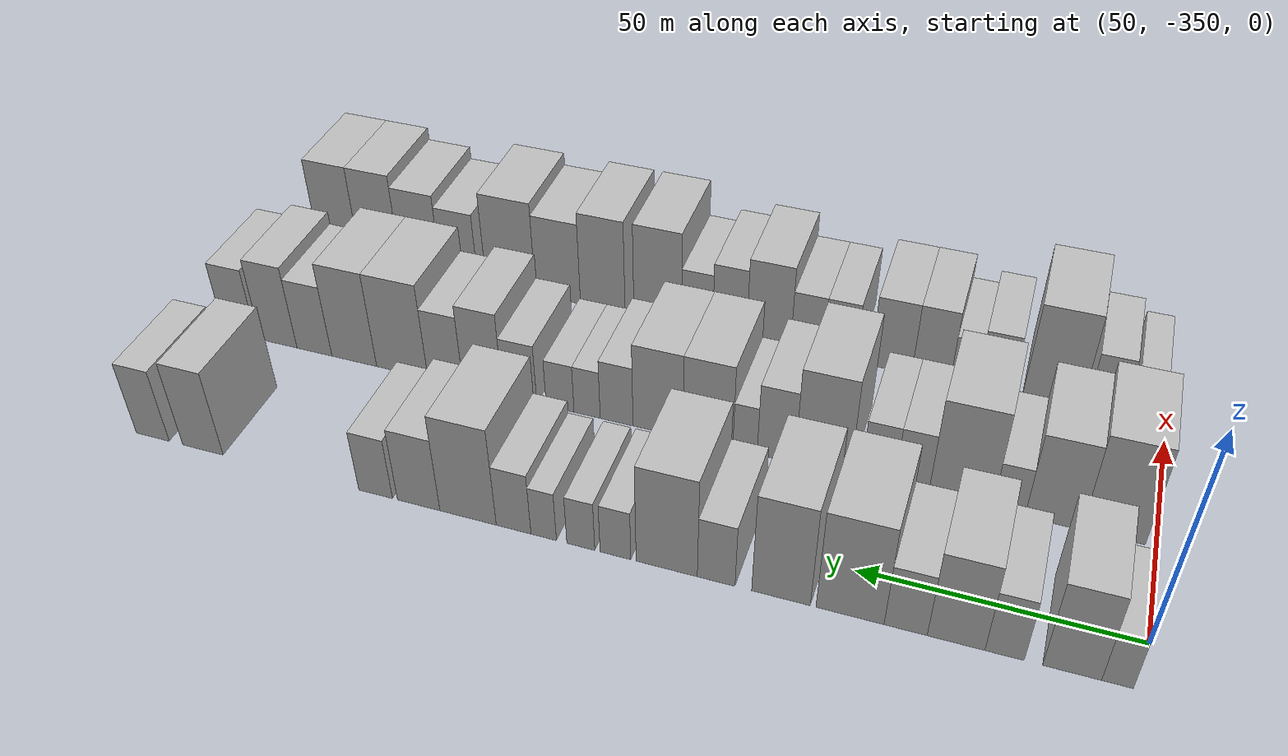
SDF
<sdf version="1.6">
 <world name="default">
  <model name="building_1">
   <static>1</static>
   <pose>50.0000 -345.4866 0 0.000000 0.000000 0.000000</pose>
   <link name="link">
    <pose>0 0 6.00 0 0 0</pose>
    <collision name="collision"><geometry><box><size>20.0000 5.0268 12.0000</size></box></geometry></collision>
    <visual name="visual">
     <cast_shadows>0</cast_shadows>
     <geometry><box><size>20.0000 5.0268 12.0000</size></box></geometry>
     <material>
      <script>
       <uri>model://HANNAS_wall/materials/scripts</uri>
       <uri>model://HANNAS_wall/materials/textures</uri>
       <name>vrc/HANNAS_wall</name>
      </script>
     </material>
    </visual>
   </link>
  </model>
  <model name="building_2">
   <static>1</static>
   <pose>50.0000 -338.2310 0 0.000000 0.000000 0.000000</pose>
   <link name="link">
    <pose>0 0 10.50 0 0 0</pose>
    <collision name="collision"><geometry><box><size>20.0000 9.4843 21.0000</size></box></geometry></collision>
    <visual name="visual">
     <cast_shadows>0</cast_shadows>
     <geometry><box><size>20.0000 9.4843 21.0000</size></box></geometry>
     <material>
      <script>
       <uri>model://HANNAS_wall/materials/scripts</uri>
       <uri>model://HANNAS_wall/materials/textures</uri>
       <name>vrc/HANNAS_wall</name>
      </script>
     </material>
    </visual>
   </link>
  </model>
  <model name="building_3">
   <static>1</static>
   <pose>50.0000 -327.2574 0 0.000000 0.000000 0.000000</pose>
   <link name="link">
    <pose>0 0 7.50 0 0 0</pose>
    <collision name="collision"><geometry><box><size>20.0000 6.4630 15.0000</size></box></geometry></collision>
    <visual name="visual">
     <cast_shadows>0</cast_shadows>
     <geometry><box><size>20.0000 6.4630 15.0000</size></box></geometry>
     <material>
      <script>
       <uri>model://HANNAS_wall/materials/scripts</uri>
       <uri>model://HANNAS_wall/materials/textures</uri>
       <name>vrc/HANNAS_wall</name>
      </script>
     </material>
    </visual>
   </link>
  </model>
  <model name="building_4">
   <static>1</static>
   <pose>50.0000 -319.1968 0 0.000000 0.000000 0.000000</pose>
   <link name="link">
    <pose>0 0 10.50 0 0 0</pose>
    <collision name="collision"><geometry><box><size>20.0000 9.6581 21.0000</size></box></geometry></collision>
    <visual name="visual">
     <cast_shadows>0</cast_shadows>
     <geometry><box><size>20.0000 9.6581 21.0000</size></box></geometry>
     <material>
      <script>
       <uri>model://HANNAS_wall/materials/scripts</uri>
       <uri>model://HANNAS_wall/materials/textures</uri>
       <name>vrc/HANNAS_wall</name>
      </script>
     </material>
    </visual>
   </link>
  </model>
  <model name="building_5">
   <static>1</static>
   <pose>50.0000 -310.7020 0 0.000000 0.000000 0.000000</pose>
   <link name="link">
    <pose>0 0 7.50 0 0 0</pose>
    <collision name="collision"><geometry><box><size>20.0000 7.3315 15.0000</size></box></geometry></collision>
    <visual name="visual">
     <cast_shadows>0</cast_shadows>
     <geometry><box><size>20.0000 7.3315 15.0000</size></box></geometry>
     <material>
      <script>
       <uri>model://HANNAS_wall/materials/scripts</uri>
       <uri>model://HANNAS_wall/materials/textures</uri>
       <name>vrc/HANNAS_wall</name>
      </script>
     </material>
    </visual>
   </link>
  </model>
  <model name="building_6">
   <static>1</static>
   <pose>50.0000 -301.1342 0 0.000000 0.000000 0.000000</pose>
   <link name="link">
    <pose>0 0 12.00 0 0 0</pose>
    <collision name="collision"><geometry><box><size>20.0000 11.8042 24.0000</size></box></geometry></collision>
    <visual name="visual">
     <cast_shadows>0</cast_shadows>
     <geometry><box><size>20.0000 11.8042 24.0000</size></box></geometry>
     <material>
      <script>
       <uri>model://HANNAS_wall/materials/scripts</uri>
       <uri>model://HANNAS_wall/materials/textures</uri>
       <name>vrc/HANNAS_wall</name>
      </script>
     </material>
    </visual>
   </link>
  </model>
  <model name="building_7">
   <static>1</static>
   <pose>50.0000 -289.0184 0 0.000000 0.000000 0.000000</pose>
   <link name="link">
    <pose>0 0 12.00 0 0 0</pose>
    <collision name="collision"><geometry><box><size>20.0000 10.4274 24.0000</size></box></geometry></collision>
    <visual name="visual">
     <cast_shadows>0</cast_shadows>
     <geometry><box><size>20.0000 10.4274 24.0000</size></box></geometry>
     <material>
      <script>
       <uri>model://HANNAS_wall/materials/scripts</uri>
       <uri>model://HANNAS_wall/materials/textures</uri>
       <name>vrc/HANNAS_wall</name>
      </script>
     </material>
    </visual>
   </link>
  </model>
  <model name="building_8">
   <static>1</static>
   <pose>50.0000 -277.3767 0 0.000000 0.000000 0.000000</pose>
   <link name="link">
    <pose>0 0 7.50 0 0 0</pose>
    <collision name="collision"><geometry><box><size>20.0000 6.8560 15.0000</size></box></geometry></collision>
    <visual name="visual">
     <cast_shadows>0</cast_shadows>
     <geometry><box><size>20.0000 6.8560 15.0000</size></box></geometry>
     <material>
      <script>
       <uri>model://HANNAS_wall/materials/scripts</uri>
       <uri>model://HANNAS_wall/materials/textures</uri>
       <name>vrc/HANNAS_wall</name>
      </script>
     </material>
    </visual>
   </link>
  </model>
  <model name="building_9">
   <static>1</static>
   <pose>50.0000 -268.2881 0 0.000000 0.000000 0.000000</pose>
   <link name="link">
    <pose>0 0 12.00 0 0 0</pose>
    <collision name="collision"><geometry><box><size>20.0000 11.3212 24.0000</size></box></geometry></collision>
    <visual name="visual">
     <cast_shadows>0</cast_shadows>
     <geometry><box><size>20.0000 11.3212 24.0000</size></box></geometry>
     <material>
      <script>
       <uri>model://HANNAS_wall/materials/scripts</uri>
       <uri>model://HANNAS_wall/materials/textures</uri>
       <name>vrc/HANNAS_wall</name>
      </script>
     </material>
    </visual>
   </link>
  </model>
  <model name="building_10">
   <static>1</static>
   <pose>50.0000 -258.7384 0 0.000000 0.000000 0.000000</pose>
   <link name="link">
    <pose>0 0 6.00 0 0 0</pose>
    <collision name="collision"><geometry><box><size>20.0000 5.7780 12.0000</size></box></geometry></collision>
    <visual name="visual">
     <cast_shadows>0</cast_shadows>
     <geometry><box><size>20.0000 5.7780 12.0000</size></box></geometry>
     <material>
      <script>
       <uri>model://HANNAS_wall/materials/scripts</uri>
       <uri>model://HANNAS_wall/materials/textures</uri>
       <name>vrc/HANNAS_wall</name>
      </script>
     </material>
    </visual>
   </link>
  </model>
  <model name="building_11">
   <static>1</static>
   <pose>50.0000 -252.1770 0 0.000000 0.000000 0.000000</pose>
   <link name="link">
    <pose>0 0 6.00 0 0 0</pose>
    <collision name="collision"><geometry><box><size>20.0000 5.3448 12.0000</size></box></geometry></collision>
    <visual name="visual">
     <cast_shadows>0</cast_shadows>
     <geometry><box><size>20.0000 5.3448 12.0000</size></box></geometry>
     <material>
      <script>
       <uri>model://HANNAS_wall/materials/scripts</uri>
       <uri>model://HANNAS_wall/materials/textures</uri>
       <name>vrc/HANNAS_wall</name>
      </script>
     </material>
    </visual>
   </link>
  </model>
  <model name="building_12">
   <static>1</static>
   <pose>50.0000 -245.0418 0 0.000000 0.000000 0.000000</pose>
   <link name="link">
    <pose>0 0 6.00 0 0 0</pose>
    <collision name="collision"><geometry><box><size>20.0000 4.9258 12.0000</size></box></geometry></collision>
    <visual name="visual">
     <cast_shadows>0</cast_shadows>
     <geometry><box><size>20.0000 4.9258 12.0000</size></box></geometry>
     <material>
      <script>
       <uri>model://HANNAS_wall/materials/scripts</uri>
       <uri>model://HANNAS_wall/materials/textures</uri>
       <name>vrc/HANNAS_wall</name>
      </script>
     </material>
    </visual>
   </link>
  </model>
  <model name="building_13">
   <static>1</static>
   <pose>50.0000 -239.1823 0 0.000000 0.000000 0.000000</pose>
   <link name="link">
    <pose>0 0 7.50 0 0 0</pose>
    <collision name="collision"><geometry><box><size>20.0000 6.7931 15.0000</size></box></geometry></collision>
    <visual name="visual">
     <cast_shadows>0</cast_shadows>
     <geometry><box><size>20.0000 6.7931 15.0000</size></box></geometry>
     <material>
      <script>
       <uri>model://HANNAS_wall/materials/scripts</uri>
       <uri>model://HANNAS_wall/materials/textures</uri>
       <name>vrc/HANNAS_wall</name>
      </script>
     </material>
    </visual>
   </link>
  </model>
  <model name="building_14">
   <static>1</static>
   <pose>50.0000 -230.1749 0 0.000000 0.000000 0.000000</pose>
   <link name="link">
    <pose>0 0 12.00 0 0 0</pose>
    <collision name="collision"><geometry><box><size>20.0000 11.2219 24.0000</size></box></geometry></collision>
    <visual name="visual">
     <cast_shadows>0</cast_shadows>
     <geometry><box><size>20.0000 11.2219 24.0000</size></box></geometry>
     <material>
      <script>
       <uri>model://HANNAS_wall/materials/scripts</uri>
       <uri>model://HANNAS_wall/materials/textures</uri>
       <name>vrc/HANNAS_wall</name>
      </script>
     </material>
    </visual>
   </link>
  </model>
  <model name="building_15">
   <static>1</static>
   <pose>50.0000 -220.2585 0 0.000000 0.000000 0.000000</pose>
   <link name="link">
    <pose>0 0 9.00 0 0 0</pose>
    <collision name="collision"><geometry><box><size>20.0000 8.6108 18.0000</size></box></geometry></collision>
    <visual name="visual">
     <cast_shadows>0</cast_shadows>
     <geometry><box><size>20.0000 8.6108 18.0000</size></box></geometry>
     <material>
      <script>
       <uri>model://HANNAS_wall/materials/scripts</uri>
       <uri>model://HANNAS_wall/materials/textures</uri>
       <name>vrc/HANNAS_wall</name>
      </script>
     </material>
    </visual>
   </link>
  </model>
  <model name="building_16">
   <static>1</static>
   <pose>50.0000 -211.4764 0 0.000000 0.000000 0.000000</pose>
   <link name="link">
    <pose>0 0 7.50 0 0 0</pose>
    <collision name="collision"><geometry><box><size>20.0000 6.9535 15.0000</size></box></geometry></collision>
    <visual name="visual">
     <cast_shadows>0</cast_shadows>
     <geometry><box><size>20.0000 6.9535 15.0000</size></box></geometry>
     <material>
      <script>
       <uri>model://HANNAS_wall/materials/scripts</uri>
       <uri>model://HANNAS_wall/materials/textures</uri>
       <name>vrc/HANNAS_wall</name>
      </script>
     </material>
    </visual>
   </link>
  </model>
  <model name="building_17">
   <static>1</static>
   <pose>50.0000 -174.6154 0 0.000000 0.000000 0.000000</pose>
   <link name="link">
    <pose>0 0 10.50 0 0 0</pose>
    <collision name="collision"><geometry><box><size>20.0000 8.9228 21.0000</size></box></geometry></collision>
    <visual name="visual">
     <cast_shadows>0</cast_shadows>
     <geometry><box><size>20.0000 8.9228 21.0000</size></box></geometry>
     <material>
      <script>
       <uri>model://HANNAS_wall/materials/scripts</uri>
       <uri>model://HANNAS_wall/materials/textures</uri>
       <name>vrc/HANNAS_wall</name>
      </script>
     </material>
    </visual>
   </link>
  </model>
  <model name="building_18">
   <static>1</static>
   <pose>50.0000 -163.4706 0 0.000000 0.000000 0.000000</pose>
   <link name="link">
    <pose>0 0 9.00 0 0 0</pose>
    <collision name="collision"><geometry><box><size>20.0000 7.3669 18.0000</size></box></geometry></collision>
    <visual name="visual">
     <cast_shadows>0</cast_shadows>
     <geometry><box><size>20.0000 7.3669 18.0000</size></box></geometry>
     <material>
      <script>
       <uri>model://HANNAS_wall/materials/scripts</uri>
       <uri>model://HANNAS_wall/materials/textures</uri>
       <name>vrc/HANNAS_wall</name>
      </script>
     </material>
    </visual>
   </link>
  </model>
  <model name="building_78">
   <static>1</static>
   <pose>82.0000 -342.4117 0 0.000000 0.000000 0.000000</pose>
   <link name="link">
    <pose>0 0 12.00 0 0 0</pose>
    <collision name="collision"><geometry><box><size>20.0000 11.1766 24.0000</size></box></geometry></collision>
    <visual name="visual">
     <cast_shadows>0</cast_shadows>
     <geometry><box><size>20.0000 11.1766 24.0000</size></box></geometry>
     <material>
      <script>
       <uri>model://HANNAS_wall/materials/scripts</uri>
       <uri>model://HANNAS_wall/materials/textures</uri>
       <name>vrc/HANNAS_wall</name>
      </script>
     </material>
    </visual>
   </link>
  </model>
  <model name="building_79">
   <static>1</static>
   <pose>82.0000 -331.7319 0 0.000000 0.000000 0.000000</pose>
   <link name="link">
    <pose>0 0 10.50 0 0 0</pose>
    <collision name="collision"><geometry><box><size>20.0000 10.1832 21.0000</size></box></geometry></collision>
    <visual name="visual">
     <cast_shadows>0</cast_shadows>
     <geometry><box><size>20.0000 10.1832 21.0000</size></box></geometry>
     <material>
      <script>
       <uri>model://HANNAS_wall/materials/scripts</uri>
       <uri>model://HANNAS_wall/materials/textures</uri>
       <name>vrc/HANNAS_wall</name>
      </script>
     </material>
    </visual>
   </link>
  </model>
  <model name="building_80">
   <static>1</static>
   <pose>82.0000 -323.7104 0 0.000000 0.000000 0.000000</pose>
   <link name="link">
    <pose>0 0 6.00 0 0 0</pose>
    <collision name="collision"><geometry><box><size>20.0000 5.8598 12.0000</size></box></geometry></collision>
    <visual name="visual">
     <cast_shadows>0</cast_shadows>
     <geometry><box><size>20.0000 5.8598 12.0000</size></box></geometry>
     <material>
      <script>
       <uri>model://HANNAS_wall/materials/scripts</uri>
       <uri>model://HANNAS_wall/materials/textures</uri>
       <name>vrc/HANNAS_wall</name>
      </script>
     </material>
    </visual>
   </link>
  </model>
  <model name="building_81">
   <static>1</static>
   <pose>82.0000 -314.8779 0 0.000000 0.000000 0.000000</pose>
   <link name="link">
    <pose>0 0 12.00 0 0 0</pose>
    <collision name="collision"><geometry><box><size>20.0000 11.8053 24.0000</size></box></geometry></collision>
    <visual name="visual">
     <cast_shadows>0</cast_shadows>
     <geometry><box><size>20.0000 11.8053 24.0000</size></box></geometry>
     <material>
      <script>
       <uri>model://HANNAS_wall/materials/scripts</uri>
       <uri>model://HANNAS_wall/materials/textures</uri>
       <name>vrc/HANNAS_wall</name>
      </script>
     </material>
    </visual>
   </link>
  </model>
  <model name="building_82">
   <static>1</static>
   <pose>82.0000 -305.7770 0 0.000000 0.000000 0.000000</pose>
   <link name="link">
    <pose>0 0 7.50 0 0 0</pose>
    <collision name="collision"><geometry><box><size>20.0000 6.3965 15.0000</size></box></geometry></collision>
    <visual name="visual">
     <cast_shadows>0</cast_shadows>
     <geometry><box><size>20.0000 6.3965 15.0000</size></box></geometry>
     <material>
      <script>
       <uri>model://HANNAS_wall/materials/scripts</uri>
       <uri>model://HANNAS_wall/materials/textures</uri>
       <name>vrc/HANNAS_wall</name>
      </script>
     </material>
    </visual>
   </link>
  </model>
  <model name="building_83">
   <static>1</static>
   <pose>82.0000 -299.3845 0 0.000000 0.000000 0.000000</pose>
   <link name="link">
    <pose>0 0 7.50 0 0 0</pose>
    <collision name="collision"><geometry><box><size>20.0000 6.3886 15.0000</size></box></geometry></collision>
    <visual name="visual">
     <cast_shadows>0</cast_shadows>
     <geometry><box><size>20.0000 6.3886 15.0000</size></box></geometry>
     <material>
      <script>
       <uri>model://HANNAS_wall/materials/scripts</uri>
       <uri>model://HANNAS_wall/materials/textures</uri>
       <name>vrc/HANNAS_wall</name>
      </script>
     </material>
    </visual>
   </link>
  </model>
  <model name="building_84">
   <static>1</static>
   <pose>82.0000 -288.8081 0 0.000000 0.000000 0.000000</pose>
   <link name="link">
    <pose>0 0 12.00 0 0 0</pose>
    <collision name="collision"><geometry><box><size>20.0000 10.7641 24.0000</size></box></geometry></collision>
    <visual name="visual">
     <cast_shadows>0</cast_shadows>
     <geometry><box><size>20.0000 10.7641 24.0000</size></box></geometry>
     <material>
      <script>
       <uri>model://HANNAS_wall/materials/scripts</uri>
       <uri>model://HANNAS_wall/materials/textures</uri>
       <name>vrc/HANNAS_wall</name>
      </script>
     </material>
    </visual>
   </link>
  </model>
  <model name="building_85">
   <static>1</static>
   <pose>82.0000 -279.7231 0 0.000000 0.000000 0.000000</pose>
   <link name="link">
    <pose>0 0 9.00 0 0 0</pose>
    <collision name="collision"><geometry><box><size>20.0000 7.4059 18.0000</size></box></geometry></collision>
    <visual name="visual">
     <cast_shadows>0</cast_shadows>
     <geometry><box><size>20.0000 7.4059 18.0000</size></box></geometry>
     <material>
      <script>
       <uri>model://HANNAS_wall/materials/scripts</uri>
       <uri>model://HANNAS_wall/materials/textures</uri>
       <name>vrc/HANNAS_wall</name>
      </script>
     </material>
    </visual>
   </link>
  </model>
  <model name="building_86">
   <static>1</static>
   <pose>82.0000 -273.6131 0 0.000000 0.000000 0.000000</pose>
   <link name="link">
    <pose>0 0 6.00 0 0 0</pose>
    <collision name="collision"><geometry><box><size>20.0000 4.8140 12.0000</size></box></geometry></collision>
    <visual name="visual">
     <cast_shadows>0</cast_shadows>
     <geometry><box><size>20.0000 4.8140 12.0000</size></box></geometry>
     <material>
      <script>
       <uri>model://HANNAS_wall/materials/scripts</uri>
       <uri>model://HANNAS_wall/materials/textures</uri>
       <name>vrc/HANNAS_wall</name>
      </script>
     </material>
    </visual>
   </link>
  </model>
  <model name="building_87">
   <static>1</static>
   <pose>82.0000 -266.1948 0 0.000000 0.000000 0.000000</pose>
   <link name="link">
    <pose>0 0 10.50 0 0 0</pose>
    <collision name="collision"><geometry><box><size>20.0000 10.0226 21.0000</size></box></geometry></collision>
    <visual name="visual">
     <cast_shadows>0</cast_shadows>
     <geometry><box><size>20.0000 10.0226 21.0000</size></box></geometry>
     <material>
      <script>
       <uri>model://HANNAS_wall/materials/scripts</uri>
       <uri>model://HANNAS_wall/materials/textures</uri>
       <name>vrc/HANNAS_wall</name>
      </script>
     </material>
    </visual>
   </link>
  </model>
  <model name="building_88">
   <static>1</static>
   <pose>82.0000 -256.0582 0 0.000000 0.000000 0.000000</pose>
   <link name="link">
    <pose>0 0 10.50 0 0 0</pose>
    <collision name="collision"><geometry><box><size>20.0000 10.2505 21.0000</size></box></geometry></collision>
    <visual name="visual">
     <cast_shadows>0</cast_shadows>
     <geometry><box><size>20.0000 10.2505 21.0000</size></box></geometry>
     <material>
      <script>
       <uri>model://HANNAS_wall/materials/scripts</uri>
       <uri>model://HANNAS_wall/materials/textures</uri>
       <name>vrc/HANNAS_wall</name>
      </script>
     </material>
    </visual>
   </link>
  </model>
  <model name="building_89">
   <static>1</static>
   <pose>82.0000 -247.5198 0 0.000000 0.000000 0.000000</pose>
   <link name="link">
    <pose>0 0 7.50 0 0 0</pose>
    <collision name="collision"><geometry><box><size>20.0000 6.8262 15.0000</size></box></geometry></collision>
    <visual name="visual">
     <cast_shadows>0</cast_shadows>
     <geometry><box><size>20.0000 6.8262 15.0000</size></box></geometry>
     <material>
      <script>
       <uri>model://HANNAS_wall/materials/scripts</uri>
       <uri>model://HANNAS_wall/materials/textures</uri>
       <name>vrc/HANNAS_wall</name>
      </script>
     </material>
    </visual>
   </link>
  </model>
  <model name="building_90">
   <static>1</static>
   <pose>82.0000 -241.3505 0 0.000000 0.000000 0.000000</pose>
   <link name="link">
    <pose>0 0 6.00 0 0 0</pose>
    <collision name="collision"><geometry><box><size>20.0000 5.5124 12.0000</size></box></geometry></collision>
    <visual name="visual">
     <cast_shadows>0</cast_shadows>
     <geometry><box><size>20.0000 5.5124 12.0000</size></box></geometry>
     <material>
      <script>
       <uri>model://HANNAS_wall/materials/scripts</uri>
       <uri>model://HANNAS_wall/materials/textures</uri>
       <name>vrc/HANNAS_wall</name>
      </script>
     </material>
    </visual>
   </link>
  </model>
  <model name="building_91">
   <static>1</static>
   <pose>82.0000 -235.6387 0 0.000000 0.000000 0.000000</pose>
   <link name="link">
    <pose>0 0 6.00 0 0 0</pose>
    <collision name="collision"><geometry><box><size>20.0000 5.9111 12.0000</size></box></geometry></collision>
    <visual name="visual">
     <cast_shadows>0</cast_shadows>
     <geometry><box><size>20.0000 5.9111 12.0000</size></box></geometry>
     <material>
      <script>
       <uri>model://HANNAS_wall/materials/scripts</uri>
       <uri>model://HANNAS_wall/materials/textures</uri>
       <name>vrc/HANNAS_wall</name>
      </script>
     </material>
    </visual>
   </link>
  </model>
  <model name="building_92">
   <static>1</static>
   <pose>82.0000 -226.9985 0 0.000000 0.000000 0.000000</pose>
   <link name="link">
    <pose>0 0 7.50 0 0 0</pose>
    <collision name="collision"><geometry><box><size>20.0000 7.3692 15.0000</size></box></geometry></collision>
    <visual name="visual">
     <cast_shadows>0</cast_shadows>
     <geometry><box><size>20.0000 7.3692 15.0000</size></box></geometry>
     <material>
      <script>
       <uri>model://HANNAS_wall/materials/scripts</uri>
       <uri>model://HANNAS_wall/materials/textures</uri>
       <name>vrc/HANNAS_wall</name>
      </script>
     </material>
    </visual>
   </link>
  </model>
  <model name="building_93">
   <static>1</static>
   <pose>82.0000 -218.9973 0 0.000000 0.000000 0.000000</pose>
   <link name="link">
    <pose>0 0 10.50 0 0 0</pose>
    <collision name="collision"><geometry><box><size>20.0000 8.6333 21.0000</size></box></geometry></collision>
    <visual name="visual">
     <cast_shadows>0</cast_shadows>
     <geometry><box><size>20.0000 8.6333 21.0000</size></box></geometry>
     <material>
      <script>
       <uri>model://HANNAS_wall/materials/scripts</uri>
       <uri>model://HANNAS_wall/materials/textures</uri>
       <name>vrc/HANNAS_wall</name>
      </script>
     </material>
    </visual>
   </link>
  </model>
  <model name="building_94">
   <static>1</static>
   <pose>82.0000 -210.7633 0 0.000000 0.000000 0.000000</pose>
   <link name="link">
    <pose>0 0 9.00 0 0 0</pose>
    <collision name="collision"><geometry><box><size>20.0000 7.8345 18.0000</size></box></geometry></collision>
    <visual name="visual">
     <cast_shadows>0</cast_shadows>
     <geometry><box><size>20.0000 7.8345 18.0000</size></box></geometry>
     <material>
      <script>
       <uri>model://HANNAS_wall/materials/scripts</uri>
       <uri>model://HANNAS_wall/materials/textures</uri>
       <name>vrc/HANNAS_wall</name>
      </script>
     </material>
    </visual>
   </link>
  </model>
  <model name="building_95">
   <static>1</static>
   <pose>82.0000 -201.0494 0 0.000000 0.000000 0.000000</pose>
   <link name="link">
    <pose>0 0 12.00 0 0 0</pose>
    <collision name="collision"><geometry><box><size>20.0000 11.5933 24.0000</size></box></geometry></collision>
    <visual name="visual">
     <cast_shadows>0</cast_shadows>
     <geometry><box><size>20.0000 11.5933 24.0000</size></box></geometry>
     <material>
      <script>
       <uri>model://HANNAS_wall/materials/scripts</uri>
       <uri>model://HANNAS_wall/materials/textures</uri>
       <name>vrc/HANNAS_wall</name>
      </script>
     </material>
    </visual>
   </link>
  </model>
  <model name="building_96">
   <static>1</static>
   <pose>82.0000 -190.1125 0 0.000000 0.000000 0.000000</pose>
   <link name="link">
    <pose>0 0 12.00 0 0 0</pose>
    <collision name="collision"><geometry><box><size>20.0000 10.2804 24.0000</size></box></geometry></collision>
    <visual name="visual">
     <cast_shadows>0</cast_shadows>
     <geometry><box><size>20.0000 10.2804 24.0000</size></box></geometry>
     <material>
      <script>
       <uri>model://HANNAS_wall/materials/scripts</uri>
       <uri>model://HANNAS_wall/materials/textures</uri>
       <name>vrc/HANNAS_wall</name>
      </script>
     </material>
    </visual>
   </link>
  </model>
  <model name="building_97">
   <static>1</static>
   <pose>82.0000 -180.9027 0 0.000000 0.000000 0.000000</pose>
   <link name="link">
    <pose>0 0 9.00 0 0 0</pose>
    <collision name="collision"><geometry><box><size>20.0000 8.1391 18.0000</size></box></geometry></collision>
    <visual name="visual">
     <cast_shadows>0</cast_shadows>
     <geometry><box><size>20.0000 8.1391 18.0000</size></box></geometry>
     <material>
      <script>
       <uri>model://HANNAS_wall/materials/scripts</uri>
       <uri>model://HANNAS_wall/materials/textures</uri>
       <name>vrc/HANNAS_wall</name>
      </script>
     </material>
    </visual>
   </link>
  </model>
  <model name="building_98">
   <static>1</static>
   <pose>82.0000 -172.5349 0 0.000000 0.000000 0.000000</pose>
   <link name="link">
    <pose>0 0 10.50 0 0 0</pose>
    <collision name="collision"><geometry><box><size>20.0000 8.5966 21.0000</size></box></geometry></collision>
    <visual name="visual">
     <cast_shadows>0</cast_shadows>
     <geometry><box><size>20.0000 8.5966 21.0000</size></box></geometry>
     <material>
      <script>
       <uri>model://HANNAS_wall/materials/scripts</uri>
       <uri>model://HANNAS_wall/materials/textures</uri>
       <name>vrc/HANNAS_wall</name>
      </script>
     </material>
    </visual>
   </link>
  </model>
  <model name="building_99">
   <static>1</static>
   <pose>82.0000 -163.3403 0 0.000000 0.000000 0.000000</pose>
   <link name="link">
    <pose>0 0 9.00 0 0 0</pose>
    <collision name="collision"><geometry><box><size>20.0000 7.7925 18.0000</size></box></geometry></collision>
    <visual name="visual">
     <cast_shadows>0</cast_shadows>
     <geometry><box><size>20.0000 7.7925 18.0000</size></box></geometry>
     <material>
      <script>
       <uri>model://HANNAS_wall/materials/scripts</uri>
       <uri>model://HANNAS_wall/materials/textures</uri>
       <name>vrc/HANNAS_wall</name>
      </script>
     </material>
    </visual>
   </link>
  </model>
  <model name="building_158">
   <static>1</static>
   <pose>114.0000 -345.3342 0 0.000000 0.000000 0.000000</pose>
   <link name="link">
    <pose>0 0 6.00 0 0 0</pose>
    <collision name="collision"><geometry><box><size>20.0000 5.3315 12.0000</size></box></geometry></collision>
    <visual name="visual">
     <cast_shadows>0</cast_shadows>
     <geometry><box><size>20.0000 5.3315 12.0000</size></box></geometry>
     <material>
      <script>
       <uri>model://HANNAS_wall/materials/scripts</uri>
       <uri>model://HANNAS_wall/materials/textures</uri>
       <name>vrc/HANNAS_wall</name>
      </script>
     </material>
    </visual>
   </link>
  </model>
  <model name="building_159">
   <static>1</static>
   <pose>114.0000 -338.1669 0 0.000000 0.000000 0.000000</pose>
   <link name="link">
    <pose>0 0 7.50 0 0 0</pose>
    <collision name="collision"><geometry><box><size>20.0000 7.0031 15.0000</size></box></geometry></collision>
    <visual name="visual">
     <cast_shadows>0</cast_shadows>
     <geometry><box><size>20.0000 7.0031 15.0000</size></box></geometry>
     <material>
      <script>
       <uri>model://HANNAS_wall/materials/scripts</uri>
       <uri>model://HANNAS_wall/materials/textures</uri>
       <name>vrc/HANNAS_wall</name>
      </script>
     </material>
    </visual>
   </link>
  </model>
  <model name="building_160">
   <static>1</static>
   <pose>114.0000 -327.9369 0 0.000000 0.000000 0.000000</pose>
   <link name="link">
    <pose>0 0 12.00 0 0 0</pose>
    <collision name="collision"><geometry><box><size>20.0000 11.4570 24.0000</size></box></geometry></collision>
    <visual name="visual">
     <cast_shadows>0</cast_shadows>
     <geometry><box><size>20.0000 11.4570 24.0000</size></box></geometry>
     <material>
      <script>
       <uri>model://HANNAS_wall/materials/scripts</uri>
       <uri>model://HANNAS_wall/materials/textures</uri>
       <name>vrc/HANNAS_wall</name>
      </script>
     </material>
    </visual>
   </link>
  </model>
  <model name="building_161">
   <static>1</static>
   <pose>114.0000 -316.6753 0 0.000000 0.000000 0.000000</pose>
   <link name="link">
    <pose>0 0 7.50 0 0 0</pose>
    <collision name="collision"><geometry><box><size>20.0000 7.0660 15.0000</size></box></geometry></collision>
    <visual name="visual">
     <cast_shadows>0</cast_shadows>
     <geometry><box><size>20.0000 7.0660 15.0000</size></box></geometry>
     <material>
      <script>
       <uri>model://HANNAS_wall/materials/scripts</uri>
       <uri>model://HANNAS_wall/materials/textures</uri>
       <name>vrc/HANNAS_wall</name>
      </script>
     </material>
    </visual>
   </link>
  </model>
  <model name="building_162">
   <static>1</static>
   <pose>114.0000 -310.4592 0 0.000000 0.000000 0.000000</pose>
   <link name="link">
    <pose>0 0 6.00 0 0 0</pose>
    <collision name="collision"><geometry><box><size>20.0000 5.3663 12.0000</size></box></geometry></collision>
    <visual name="visual">
     <cast_shadows>0</cast_shadows>
     <geometry><box><size>20.0000 5.3663 12.0000</size></box></geometry>
     <material>
      <script>
       <uri>model://HANNAS_wall/materials/scripts</uri>
       <uri>model://HANNAS_wall/materials/textures</uri>
       <name>vrc/HANNAS_wall</name>
      </script>
     </material>
    </visual>
   </link>
  </model>
  <model name="building_163">
   <static>1</static>
   <pose>114.0000 -303.8695 0 0.000000 0.000000 0.000000</pose>
   <link name="link">
    <pose>0 0 9.00 0 0 0</pose>
    <collision name="collision"><geometry><box><size>20.0000 7.8131 18.0000</size></box></geometry></collision>
    <visual name="visual">
     <cast_shadows>0</cast_shadows>
     <geometry><box><size>20.0000 7.8131 18.0000</size></box></geometry>
     <material>
      <script>
       <uri>model://HANNAS_wall/materials/scripts</uri>
       <uri>model://HANNAS_wall/materials/textures</uri>
       <name>vrc/HANNAS_wall</name>
      </script>
     </material>
    </visual>
   </link>
  </model>
  <model name="building_164">
   <static>1</static>
   <pose>114.0000 -295.6942 0 0.000000 0.000000 0.000000</pose>
   <link name="link">
    <pose>0 0 9.00 0 0 0</pose>
    <collision name="collision"><geometry><box><size>20.0000 8.5374 18.0000</size></box></geometry></collision>
    <visual name="visual">
     <cast_shadows>0</cast_shadows>
     <geometry><box><size>20.0000 8.5374 18.0000</size></box></geometry>
     <material>
      <script>
       <uri>model://HANNAS_wall/materials/scripts</uri>
       <uri>model://HANNAS_wall/materials/textures</uri>
       <name>vrc/HANNAS_wall</name>
      </script>
     </material>
    </visual>
   </link>
  </model>
  <model name="building_165">
   <static>1</static>
   <pose>114.0000 -284.9602 0 0.000000 0.000000 0.000000</pose>
   <link name="link">
    <pose>0 0 7.50 0 0 0</pose>
    <collision name="collision"><geometry><box><size>20.0000 6.9305 15.0000</size></box></geometry></collision>
    <visual name="visual">
     <cast_shadows>0</cast_shadows>
     <geometry><box><size>20.0000 6.9305 15.0000</size></box></geometry>
     <material>
      <script>
       <uri>model://HANNAS_wall/materials/scripts</uri>
       <uri>model://HANNAS_wall/materials/textures</uri>
       <name>vrc/HANNAS_wall</name>
      </script>
     </material>
    </visual>
   </link>
  </model>
  <model name="building_166">
   <static>1</static>
   <pose>114.0000 -277.9910 0 0.000000 0.000000 0.000000</pose>
   <link name="link">
    <pose>0 0 7.50 0 0 0</pose>
    <collision name="collision"><geometry><box><size>20.0000 7.0081 15.0000</size></box></geometry></collision>
    <visual name="visual">
     <cast_shadows>0</cast_shadows>
     <geometry><box><size>20.0000 7.0081 15.0000</size></box></geometry>
     <material>
      <script>
       <uri>model://HANNAS_wall/materials/scripts</uri>
       <uri>model://HANNAS_wall/materials/textures</uri>
       <name>vrc/HANNAS_wall</name>
      </script>
     </material>
    </visual>
   </link>
  </model>
  <model name="building_167">
   <static>1</static>
   <pose>114.0000 -269.7350 0 0.000000 0.000000 0.000000</pose>
   <link name="link">
    <pose>0 0 10.50 0 0 0</pose>
    <collision name="collision"><geometry><box><size>20.0000 9.5039 21.0000</size></box></geometry></collision>
    <visual name="visual">
     <cast_shadows>0</cast_shadows>
     <geometry><box><size>20.0000 9.5039 21.0000</size></box></geometry>
     <material>
      <script>
       <uri>model://HANNAS_wall/materials/scripts</uri>
       <uri>model://HANNAS_wall/materials/textures</uri>
       <name>vrc/HANNAS_wall</name>
      </script>
     </material>
    </visual>
   </link>
  </model>
  <model name="building_168">
   <static>1</static>
   <pose>114.0000 -261.2884 0 0.000000 0.000000 0.000000</pose>
   <link name="link">
    <pose>0 0 9.00 0 0 0</pose>
    <collision name="collision"><geometry><box><size>20.0000 7.3893 18.0000</size></box></geometry></collision>
    <visual name="visual">
     <cast_shadows>0</cast_shadows>
     <geometry><box><size>20.0000 7.3893 18.0000</size></box></geometry>
     <material>
      <script>
       <uri>model://HANNAS_wall/materials/scripts</uri>
       <uri>model://HANNAS_wall/materials/textures</uri>
       <name>vrc/HANNAS_wall</name>
      </script>
     </material>
    </visual>
   </link>
  </model>
  <model name="building_169">
   <static>1</static>
   <pose>114.0000 -254.1400 0 0.000000 0.000000 0.000000</pose>
   <link name="link">
    <pose>0 0 7.50 0 0 0</pose>
    <collision name="collision"><geometry><box><size>20.0000 6.9075 15.0000</size></box></geometry></collision>
    <visual name="visual">
     <cast_shadows>0</cast_shadows>
     <geometry><box><size>20.0000 6.9075 15.0000</size></box></geometry>
     <material>
      <script>
       <uri>model://HANNAS_wall/materials/scripts</uri>
       <uri>model://HANNAS_wall/materials/textures</uri>
       <name>vrc/HANNAS_wall</name>
      </script>
     </material>
    </visual>
   </link>
  </model>
  <model name="building_170">
   <static>1</static>
   <pose>114.0000 -245.3499 0 0.000000 0.000000 0.000000</pose>
   <link name="link">
    <pose>0 0 12.00 0 0 0</pose>
    <collision name="collision"><geometry><box><size>20.0000 10.6728 24.0000</size></box></geometry></collision>
    <visual name="visual">
     <cast_shadows>0</cast_shadows>
     <geometry><box><size>20.0000 10.6728 24.0000</size></box></geometry>
     <material>
      <script>
       <uri>model://HANNAS_wall/materials/scripts</uri>
       <uri>model://HANNAS_wall/materials/textures</uri>
       <name>vrc/HANNAS_wall</name>
      </script>
     </material>
    </visual>
   </link>
  </model>
  <model name="building_171">
   <static>1</static>
   <pose>114.0000 -232.9028 0 0.000000 0.000000 0.000000</pose>
   <link name="link">
    <pose>0 0 12.00 0 0 0</pose>
    <collision name="collision"><geometry><box><size>20.0000 10.2216 24.0000</size></box></geometry></collision>
    <visual name="visual">
     <cast_shadows>0</cast_shadows>
     <geometry><box><size>20.0000 10.2216 24.0000</size></box></geometry>
     <material>
      <script>
       <uri>model://HANNAS_wall/materials/scripts</uri>
       <uri>model://HANNAS_wall/materials/textures</uri>
       <name>vrc/HANNAS_wall</name>
      </script>
     </material>
    </visual>
   </link>
  </model>
  <model name="building_172">
   <static>1</static>
   <pose>114.0000 -222.5743 0 0.000000 0.000000 0.000000</pose>
   <link name="link">
    <pose>0 0 10.50 0 0 0</pose>
    <collision name="collision"><geometry><box><size>20.0000 10.4354 21.0000</size></box></geometry></collision>
    <visual name="visual">
     <cast_shadows>0</cast_shadows>
     <geometry><box><size>20.0000 10.4354 21.0000</size></box></geometry>
     <material>
      <script>
       <uri>model://HANNAS_wall/materials/scripts</uri>
       <uri>model://HANNAS_wall/materials/textures</uri>
       <name>vrc/HANNAS_wall</name>
      </script>
     </material>
    </visual>
   </link>
  </model>
  <model name="building_173">
   <static>1</static>
   <pose>114.0000 -211.4974 0 0.000000 0.000000 0.000000</pose>
   <link name="link">
    <pose>0 0 12.00 0 0 0</pose>
    <collision name="collision"><geometry><box><size>20.0000 11.7183 24.0000</size></box></geometry></collision>
    <visual name="visual">
     <cast_shadows>0</cast_shadows>
     <geometry><box><size>20.0000 11.7183 24.0000</size></box></geometry>
     <material>
      <script>
       <uri>model://HANNAS_wall/materials/scripts</uri>
       <uri>model://HANNAS_wall/materials/textures</uri>
       <name>vrc/HANNAS_wall</name>
      </script>
     </material>
    </visual>
   </link>
  </model>
  <model name="building_174">
   <static>1</static>
   <pose>114.0000 -199.2010 0 0.000000 0.000000 0.000000</pose>
   <link name="link">
    <pose>0 0 9.00 0 0 0</pose>
    <collision name="collision"><geometry><box><size>20.0000 8.8746 18.0000</size></box></geometry></collision>
    <visual name="visual">
     <cast_shadows>0</cast_shadows>
     <geometry><box><size>20.0000 8.8746 18.0000</size></box></geometry>
     <material>
      <script>
       <uri>model://HANNAS_wall/materials/scripts</uri>
       <uri>model://HANNAS_wall/materials/textures</uri>
       <name>vrc/HANNAS_wall</name>
      </script>
     </material>
    </visual>
   </link>
  </model>
  <model name="building_175">
   <static>1</static>
   <pose>114.0000 -189.7983 0 0.000000 0.000000 0.000000</pose>
   <link name="link">
    <pose>0 0 10.50 0 0 0</pose>
    <collision name="collision"><geometry><box><size>20.0000 9.9308 21.0000</size></box></geometry></collision>
    <visual name="visual">
     <cast_shadows>0</cast_shadows>
     <geometry><box><size>20.0000 9.9308 21.0000</size></box></geometry>
     <material>
      <script>
       <uri>model://HANNAS_wall/materials/scripts</uri>
       <uri>model://HANNAS_wall/materials/textures</uri>
       <name>vrc/HANNAS_wall</name>
      </script>
     </material>
    </visual>
   </link>
  </model>
  <model name="building_176">
   <static>1</static>
   <pose>114.0000 -179.7504 0 0.000000 0.000000 0.000000</pose>
   <link name="link">
    <pose>0 0 12.00 0 0 0</pose>
    <collision name="collision"><geometry><box><size>20.0000 10.1649 24.0000</size></box></geometry></collision>
    <visual name="visual">
     <cast_shadows>0</cast_shadows>
     <geometry><box><size>20.0000 10.1649 24.0000</size></box></geometry>
     <material>
      <script>
       <uri>model://HANNAS_wall/materials/scripts</uri>
       <uri>model://HANNAS_wall/materials/textures</uri>
       <name>vrc/HANNAS_wall</name>
      </script>
     </material>
    </visual>
   </link>
  </model>
  <model name="building_177">
   <static>1</static>
   <pose>114.0000 -169.5722 0 0.000000 0.000000 0.000000</pose>
   <link name="link">
    <pose>0 0 12.00 0 0 0</pose>
    <collision name="collision"><geometry><box><size>20.0000 10.1916 24.0000</size></box></geometry></collision>
    <visual name="visual">
     <cast_shadows>0</cast_shadows>
     <geometry><box><size>20.0000 10.1916 24.0000</size></box></geometry>
     <material>
      <script>
       <uri>model://HANNAS_wall/materials/scripts</uri>
       <uri>model://HANNAS_wall/materials/textures</uri>
       <name>vrc/HANNAS_wall</name>
      </script>
     </material>
    </visual>
   </link>
  </model>
 </world>
</sdf>
